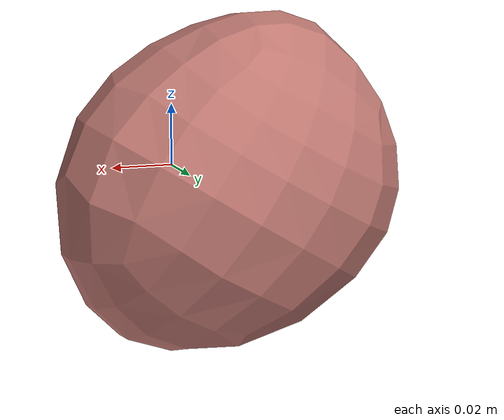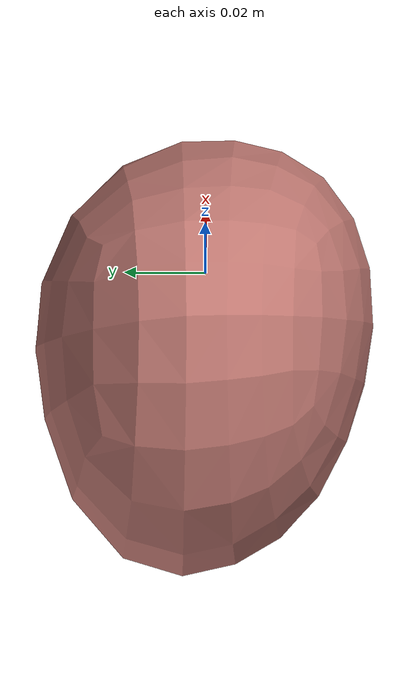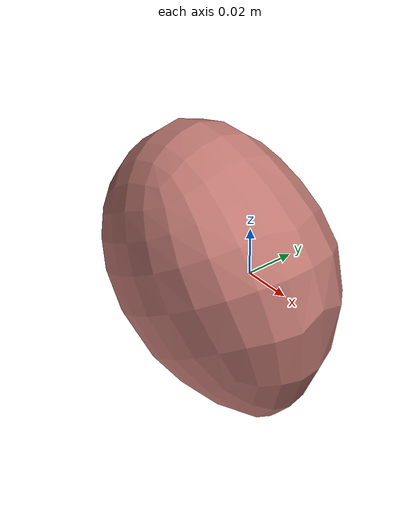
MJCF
<mujoco model="Potato_27">
  <compiler autolimits="true" boundmass="0.01" angle="radian"/>
  <default>
    <default class="/">
      <default class="__VISUAL_MJT__">
        <geom contype="0" conaffinity="0" group="0"/>
      </default>
      <default class="__STRUCTURAL_MJT__">
        <geom contype="8" conaffinity="15" group="4" friction="0.90000000000000002 0.90000000000000002 0.001" solref="0.025000000000000001 1" solimp="0.998 0.998 0.001"/>
      </default>
      <default class="__DYNAMIC_MJT__">
        <geom contype="1" conaffinity="15" group="4" friction="0.90000000000000002 0.90000000000000002 0.001" solref="0.025000000000000001 1" solimp="0.998 0.998 0.001"/>
      </default>
    </default>
  </default>
  <asset>
    <texture name="Potato3_Mat2" type="2d" file="Potato3_AlbedoTransparency.png"/>
    <material name="material_Potato3_Mat2" class="/" texture="Potato3_Mat2" specular="0.5" shininess="0.5" rgba="1 0.65441179999999999 0.65441179999999999 1"/>
    <mesh name="Potato_27_potato_c7" class="/" file="Potato_27_potato_c7/Potato_27_potato_c7.obj" scale="1 1 1"/>
  </asset>
  <worldbody>
    <body name="Potato_27">
      <joint name="Potato_27_free" class="/" type="free" pos="0 0 0" axis="0 0 1" stiffness="0" range="0 0" armature="0" damping="0.10000000000000001" frictionloss="0"/>
      <body name="Potato_27_potato_c7" pos="-0.0098867388916015625 0.00038000000000000002 -0.0097575341796874993" quat="0.96198475360870361 0 -0.27310311794281006 0">
        <geom name="Potato_27_potato_c7" class="__VISUAL_MJT__" type="mesh" material="material_Potato3_Mat2" shellinertia="true" mesh="Potato_27_potato_c7"/>
        <geom name="Potato_27_PrimitiveCollider_0" class="__DYNAMIC_MJT__" type="capsule" size="0.040016308426856995 0.019168943166732788" rgba="0 1 0 1" pos="0.0055731534957885742 -0.00038395635783672333 0.0066559035331010818" quat="1.4751396609986736e-06 0.99999999999891198 0 0"/>
        <geom name="Potato_27_PrimitiveCollider_1" class="__DYNAMIC_MJT__" type="capsule" size="0.036998867988586426 0.022186387330293655" rgba="0 1 0 1" pos="-0.019826846197247505 -0.00038395635783672333 0.0066559039987623692" quat="1.4751396609986736e-06 0.99999999999891198 0 0"/>
        <geom name="Potato_27_PrimitiveCollider_2" class="__DYNAMIC_MJT__" type="capsule" size="0.04174523800611496 0.017849374562501907" rgba="0 1 0 1" pos="-0.0073268990963697433 -0.00038362113991752267 0.0066551947966217995" quat="1.4751396609986736e-06 0.99999999999891198 0 0"/>
      </body>
    </body>
  </worldbody>
</mujoco>
